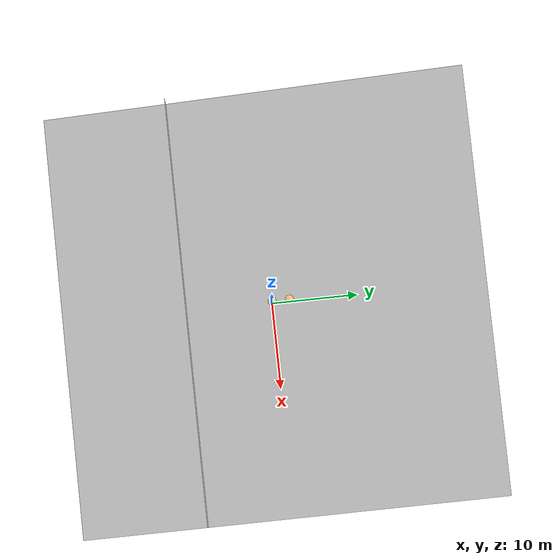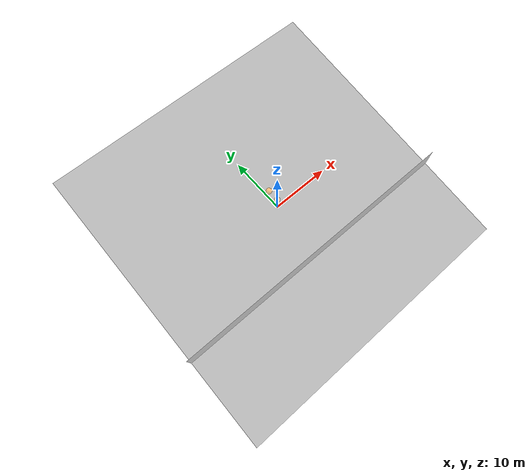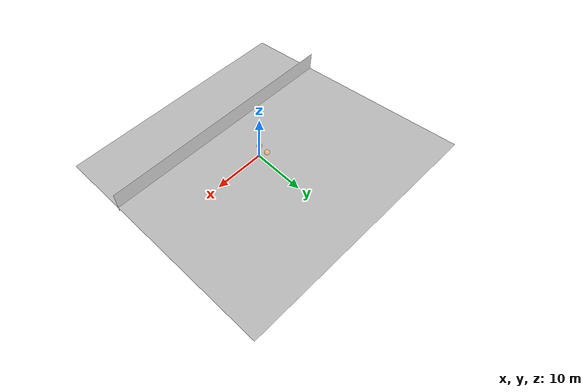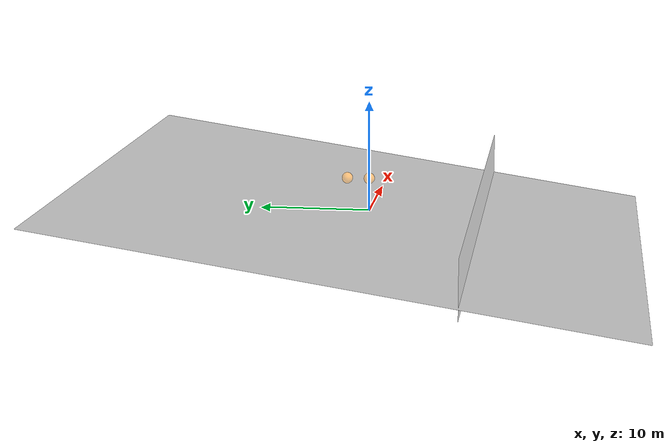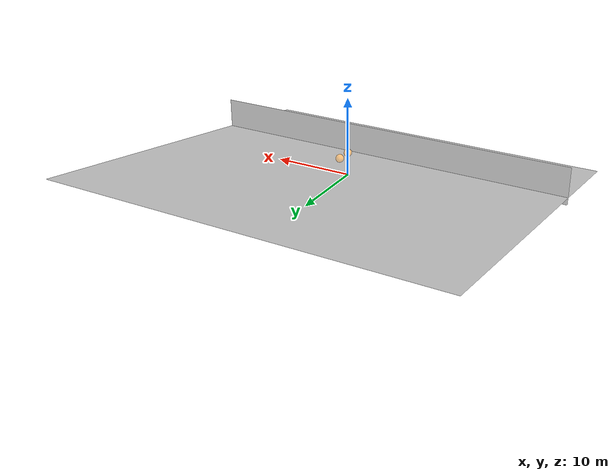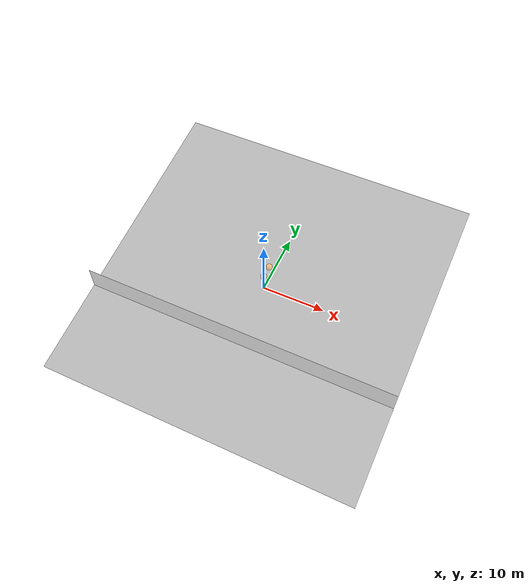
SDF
<?xml version="1.0"?>
<sdf version="1.9">
  <world name="hydroelastic_scene">
    <light type="directional" name="sun">
    </light>
    <model name="compliant_ball">
      <pose>0 0 3.0 0 0 0</pose>
      <link name="link">
        <inertial>
          <inertia>
            <ixx>1.0</ixx>
            <iyy>1.0</iyy>
            <izz>1.0</izz>
            <ixy>0</ixy>
            <ixz>0</ixz>
            <iyz>0</iyz>
          </inertia>
          <mass>10</mass>
        </inertial>
        <collision name="collision">
          <geometry>
            <sphere>
              <radius>0.5</radius>
            </sphere>
          </geometry>
          <drake:proximity_properties>
            <drake:mu_dynamic>0.3</drake:mu_dynamic>
            <drake:mu_static>0.3</drake:mu_static>
            <drake:mesh_resolution_hint>0.5</drake:mesh_resolution_hint>
            <drake:hydroelastic_modulus>1000</drake:hydroelastic_modulus>
            <drake:hunt_crossley_dissipation>5</drake:hunt_crossley_dissipation>
            <drake:compliant_hydroelastic/>
          </drake:proximity_properties>
        </collision>
        <visual name="visual">
          <geometry>
            <sphere>
              <radius>0.5</radius>
            </sphere>
          </geometry>
          <material>
            <diffuse>1.0 0.55 0.0 0.5</diffuse>
          </material>
        </visual>
      </link>
    </model>
    <model name="rigid_ball">
      <pose>0 2 3.0 0 0 0</pose>
      <link name="link">
        <inertial>
          <inertia>
            <ixx>1.0</ixx>
            <iyy>1.0</iyy>
            <izz>1.0</izz>
            <ixy>0</ixy>
            <ixz>0</ixz>
            <iyz>0</iyz>
          </inertia>
          <mass>10</mass>
        </inertial>
        <collision name="collision">
          <geometry>
            <sphere>
              <radius>0.5</radius>
            </sphere>
          </geometry>
          <drake:proximity_properties>
            <drake:mu_dynamic>0.3</drake:mu_dynamic>
            <drake:mu_static>0.3</drake:mu_static>
            <drake:mesh_resolution_hint>0.5</drake:mesh_resolution_hint>
            <drake:hunt_crossley_dissipation>5</drake:hunt_crossley_dissipation>
            <!-- TODO(sloretz) make compliant instead of rigid -->
            <drake:rigid_hydroelastic/>
          </drake:proximity_properties>
        </collision>
        <visual name="visual">
          <geometry>
            <sphere>
              <radius>0.5</radius>
            </sphere>
          </geometry>
          <material>
            <diffuse>1.0 0.55 0.0 0.5</diffuse>
          </material>
        </visual>
      </link>
    </model>
    <model name="inclined_plane">
      <static>true</static>
      <pose degrees="true">0 -10 0 -90 0 0</pose>
      <link name="link">
        <collision name="collision">
          <geometry>
            <plane/>
          </geometry>
          <drake:proximity_properties>
            <drake:mu_dynamic>0.3</drake:mu_dynamic>
            <drake:mu_static>0.3</drake:mu_static>
            <drake:mesh_resolution_hint>0.5</drake:mesh_resolution_hint>
            <drake:hunt_crossley_dissipation>5</drake:hunt_crossley_dissipation>
            <!-- TODO(sloretz) make compliant instead of rigid -->
            <drake:rigid_hydroelastic/>
          </drake:proximity_properties>
        </collision>
        <visual name="visual">
          <geometry>
            <plane>
              <size>50 5</size>
            </plane>
          </geometry>
          <material>
            <diffuse>0.5 0.5 0.5 0.5</diffuse>
          </material>
        </visual>
      </link>
    </model>
    <model name="vertical_plane">
      <static>true</static>
      <pose>0 0 0 0.15 0 0</pose>
      <link name="link">
        <collision name="collision">
          <geometry>
            <plane/>
          </geometry>
          <drake:proximity_properties>
            <drake:mu_dynamic>0.3</drake:mu_dynamic>
            <drake:mu_static>0.3</drake:mu_static>
            <drake:mesh_resolution_hint>0.5</drake:mesh_resolution_hint>
            <drake:hunt_crossley_dissipation>5</drake:hunt_crossley_dissipation>
            <!-- TODO(sloretz) make compliant instead of rigid -->
            <drake:rigid_hydroelastic/>
          </drake:proximity_properties>
        </collision>
        <visual name="visual">
          <geometry>
            <plane>
              <size>50 50</size>
            </plane>
          </geometry>
          <material>
            <diffuse>0.5 0.5 0.5 0.5</diffuse>
          </material>
        </visual>
      </link>
    </model>
  </world>
</sdf>
